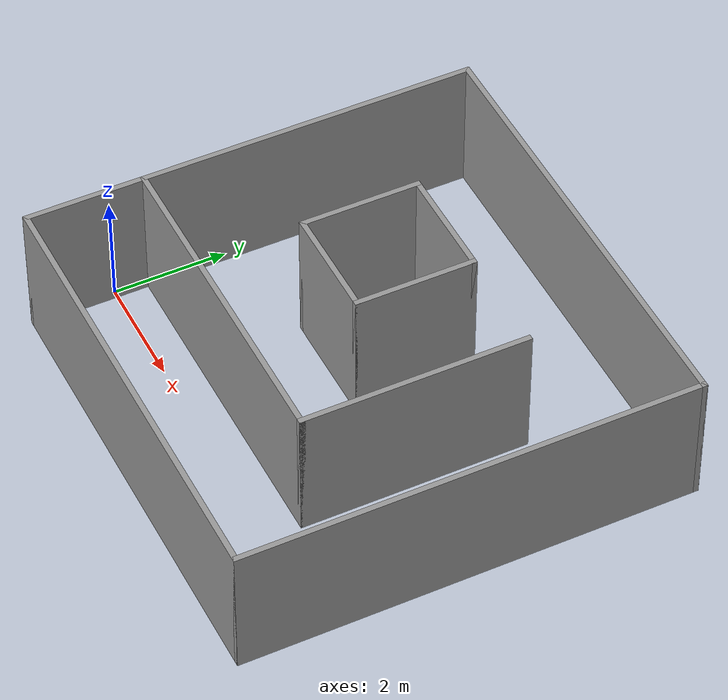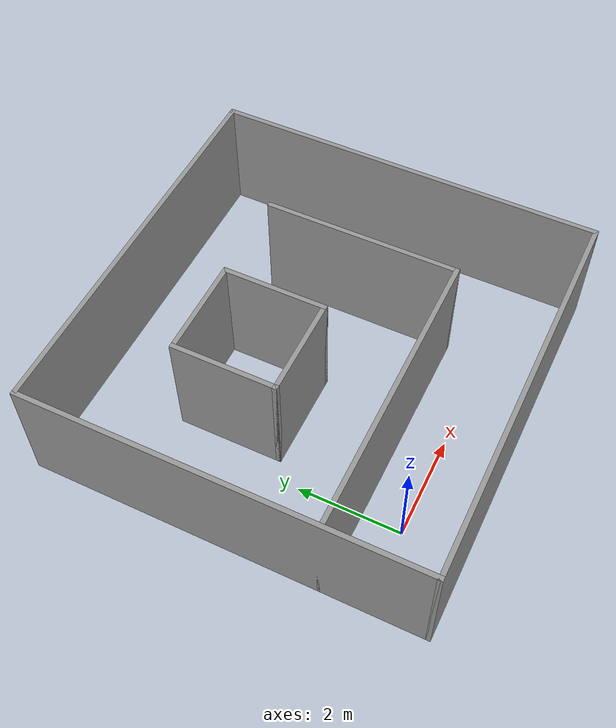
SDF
<?xml version='1.0'?>
<sdf version='1.6'>
    <model name='auto_generated'>
    <pose frame=''>-2 -2 0 0 0 0</pose>

        <link name='Wall_0'>
            <collision name='Wall_0_Collision'>
            <geometry>
                <box>
                <size>0.1 8.2 2.5</size>
                </box>
            </geometry>
            <pose frame=''>0 0 0 0 0 0</pose>
            </collision>
            <visual name='Wall_0_Visual'>
            <pose frame=''>0 0 0 0 0 0</pose>
            <geometry>
                <box>
                <size>0.1 8.2 2.5</size>
                </box>
            </geometry>
            <material>
                <script>
                <uri>file://media/materials/scripts/gazebo.material</uri>
                <name>Gazebo/Grey</name>
                </script>
                <ambient>1 1 1 1</ambient>
            </material>
            </visual>
            <pose frame=''>0.95 5.0 0 0 0 0</pose>
        </link>

        <link name='Wall_1'>
            <collision name='Wall_1_Collision'>
            <geometry>
                <box>
                <size>0.1 8.2 2.5</size>
                </box>
            </geometry>
            <pose frame=''>0 0 0 0 0 0</pose>
            </collision>
            <visual name='Wall_1_Visual'>
            <pose frame=''>0 0 0 0 0 0</pose>
            <geometry>
                <box>
                <size>0.1 8.2 2.5</size>
                </box>
            </geometry>
            <material>
                <script>
                <uri>file://media/materials/scripts/gazebo.material</uri>
                <name>Gazebo/Grey</name>
                </script>
                <ambient>1 1 1 1</ambient>
            </material>
            </visual>
            <pose frame=''>9.05 5.0 0 0 0 0</pose>
        </link>

        <link name='Wall_2'>
            <collision name='Wall_2_Collision'>
            <geometry>
                <box>
                <size>8.2 0.1 2.5</size>
                </box>
            </geometry>
            <pose frame=''>0 0 0 0 0 0</pose>
            </collision>
            <visual name='Wall_2_Visual'>
            <pose frame=''>0 0 0 0 0 0</pose>
            <geometry>
                <box>
                <size>8.2 0.1 2.5</size>
                </box>
            </geometry>
            <material>
                <script>
                <uri>file://media/materials/scripts/gazebo.material</uri>
                <name>Gazebo/Grey</name>
                </script>
                <ambient>1 1 1 1</ambient>
            </material>
            </visual>
            <pose frame=''>5.0 0.95 0 0 0 0</pose>
        </link>

        <link name='Wall_3'>
            <collision name='Wall_3_Collision'>
            <geometry>
                <box>
                <size>8.2 0.1 2.5</size>
                </box>
            </geometry>
            <pose frame=''>0 0 0 0 0 0</pose>
            </collision>
            <visual name='Wall_3_Visual'>
            <pose frame=''>0 0 0 0 0 0</pose>
            <geometry>
                <box>
                <size>8.2 0.1 2.5</size>
                </box>
            </geometry>
            <material>
                <script>
                <uri>file://media/materials/scripts/gazebo.material</uri>
                <name>Gazebo/Grey</name>
                </script>
                <ambient>1 1 1 1</ambient>
            </material>
            </visual>
            <pose frame=''>5.0 9.05 0 0 0 0</pose>
        </link>

        <link name='Wall_4'>
            <collision name='Wall_4_Collision'>
            <geometry>
                <box>
                <size>6.1 0.1 2.5</size>
                </box>
            </geometry>
            <pose frame=''>0 0 0 0 0 0</pose>
            </collision>
            <visual name='Wall_4_Visual'>
            <pose frame=''>0 0 0 0 0 0</pose>
            <geometry>
                <box>
                <size>6.1 0.1 2.5</size>
                </box>
            </geometry>
            <material>
                <script>
                <uri>file://media/materials/scripts/gazebo.material</uri>
                <name>Gazebo/Grey</name>
                </script>
                <ambient>1 1 1 1</ambient>
            </material>
            </visual>
            <pose frame=''>3.95 3.05 0 0 0 0</pose>
        </link>

        <link name='Wall_5'>
            <collision name='Wall_5_Collision'>
            <geometry>
                <box>
                <size>0.1 4.1 2.5</size>
                </box>
            </geometry>
            <pose frame=''>0 0 0 0 0 0</pose>
            </collision>
            <visual name='Wall_5_Visual'>
            <pose frame=''>0 0 0 0 0 0</pose>
            <geometry>
                <box>
                <size>0.1 4.1 2.5</size>
                </box>
            </geometry>
            <material>
                <script>
                <uri>file://media/materials/scripts/gazebo.material</uri>
                <name>Gazebo/Grey</name>
                </script>
                <ambient>1 1 1 1</ambient>
            </material>
            </visual>
            <pose frame=''>6.95 5.05 0 0 0 0</pose>
        </link>

        <link name='Wall_6'>
            <collision name='Wall_6_Collision'>
            <geometry>
                <box>
                <size>0.1 2.2 2.5</size>
                </box>
            </geometry>
            <pose frame=''>0 0 0 0 0 0</pose>
            </collision>
            <visual name='Wall_6_Visual'>
            <pose frame=''>0 0 0 0 0 0</pose>
            <geometry>
                <box>
                <size>0.1 2.2 2.5</size>
                </box>
            </geometry>
            <material>
                <script>
                <uri>file://media/materials/scripts/gazebo.material</uri>
                <name>Gazebo/Grey</name>
                </script>
                <ambient>1 1 1 1</ambient>
            </material>
            </visual>
            <pose frame=''>3.05 6.0 0 0 0 0</pose>
        </link>

        <link name='Wall_7'>
            <collision name='Wall_7_Collision'>
            <geometry>
                <box>
                <size>0.1 2.2 2.5</size>
                </box>
            </geometry>
            <pose frame=''>0 0 0 0 0 0</pose>
            </collision>
            <visual name='Wall_7_Visual'>
            <pose frame=''>0 0 0 0 0 0</pose>
            <geometry>
                <box>
                <size>0.1 2.2 2.5</size>
                </box>
            </geometry>
            <material>
                <script>
                <uri>file://media/materials/scripts/gazebo.material</uri>
                <name>Gazebo/Grey</name>
                </script>
                <ambient>1 1 1 1</ambient>
            </material>
            </visual>
            <pose frame=''>5.05 6.0 0 0 0 0</pose>
        </link>

        <link name='Wall_8'>
            <collision name='Wall_8_Collision'>
            <geometry>
                <box>
                <size>2.1 0.1 2.5</size>
                </box>
            </geometry>
            <pose frame=''>0 0 0 0 0 0</pose>
            </collision>
            <visual name='Wall_8_Visual'>
            <pose frame=''>0 0 0 0 0 0</pose>
            <geometry>
                <box>
                <size>2.1 0.1 2.5</size>
                </box>
            </geometry>
            <material>
                <script>
                <uri>file://media/materials/scripts/gazebo.material</uri>
                <name>Gazebo/Grey</name>
                </script>
                <ambient>1 1 1 1</ambient>
            </material>
            </visual>
            <pose frame=''>4.05 4.95 0 0 0 0</pose>
        </link>

        <link name='Wall_9'>
            <collision name='Wall_9_Collision'>
            <geometry>
                <box>
                <size>2.1 0.1 2.5</size>
                </box>
            </geometry>
            <pose frame=''>0 0 0 0 0 0</pose>
            </collision>
            <visual name='Wall_9_Visual'>
            <pose frame=''>0 0 0 0 0 0</pose>
            <geometry>
                <box>
                <size>2.1 0.1 2.5</size>
                </box>
            </geometry>
            <material>
                <script>
                <uri>file://media/materials/scripts/gazebo.material</uri>
                <name>Gazebo/Grey</name>
                </script>
                <ambient>1 1 1 1</ambient>
            </material>
            </visual>
            <pose frame=''>4.05 7.05 0 0 0 0</pose>
        </link>

    <static>1</static>
    </model>
</sdf>
